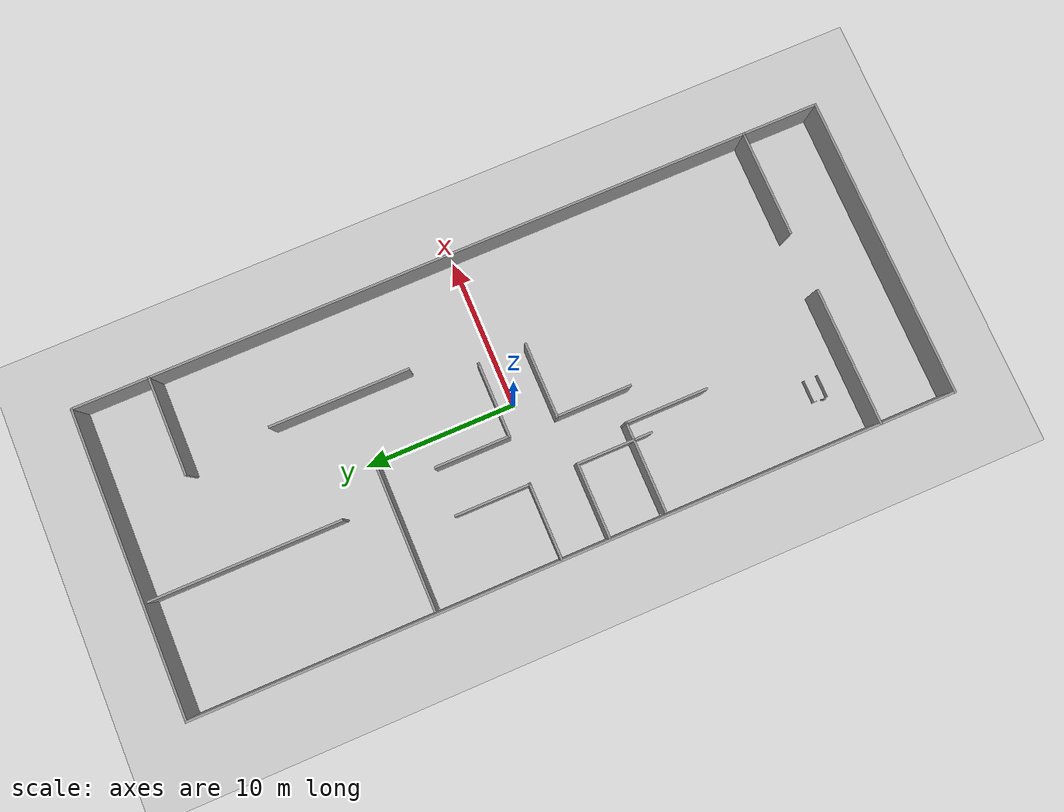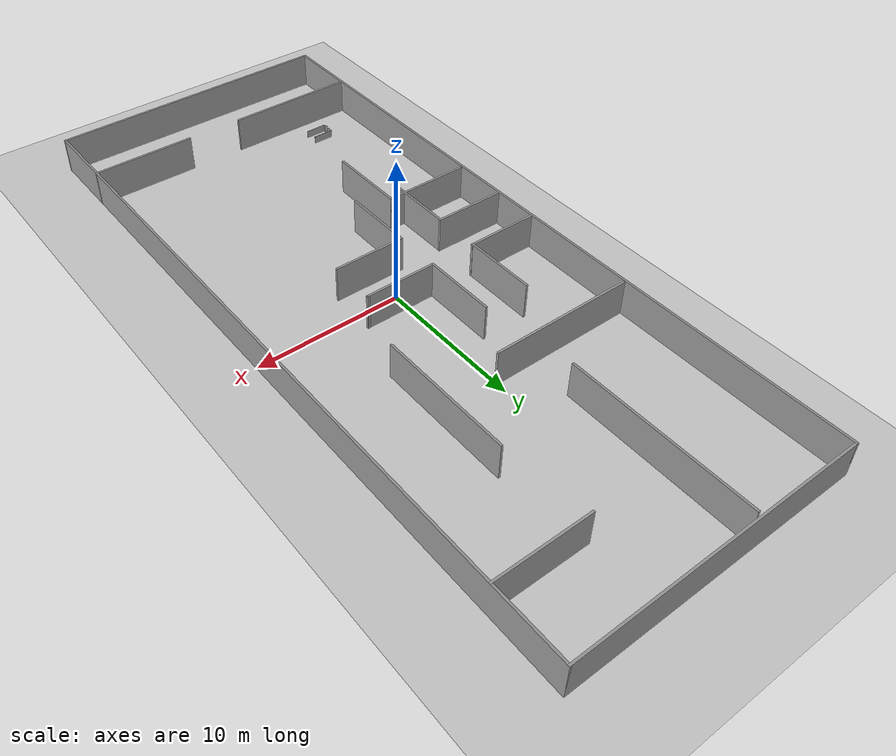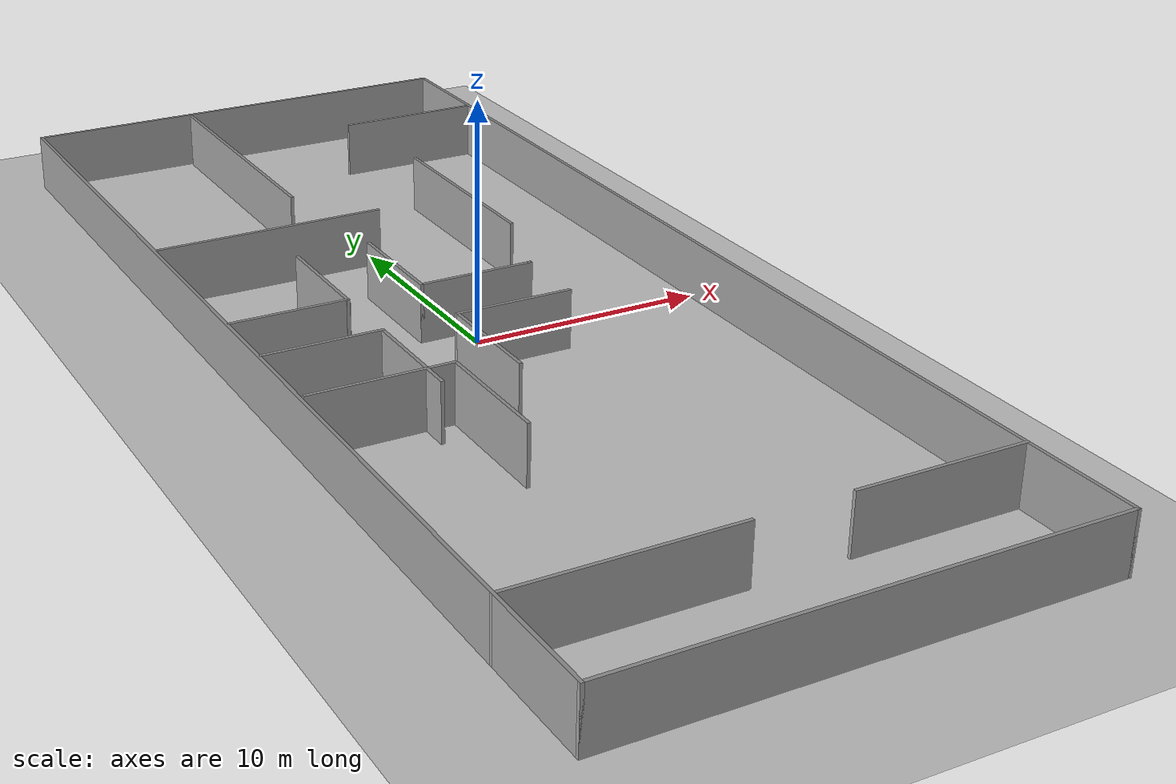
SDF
<sdf version="1.7">
 <world name="default">
  <include><uri>model://ground_plane</uri></include>
  <include><uri>model://sun</uri></include>
  <scene><shadows>false</shadows></scene>
  <physics type="ode">
   <real_time_update_rate>1000.0</real_time_update_rate>
   <max_step_size>0.001</max_step_size>
   <real_time_factor>1</real_time_factor>
   <ode>
    <solver>
     <type>quick</type>
     <iters>150</iters>
     <precon_iters>0</precon_iters>
     <sor>1.400000</sor>
     <use_dynamic_moi_rescaling>1</use_dynamic_moi_rescaling>
    </solver>
    <constraints>
     <cfm>0.00001</cfm>
     <erp>0.2</erp>
     <contact_max_correcting_vel>2000.000000</contact_max_correcting_vel>
     <contact_surface_layer>0.01000</contact_surface_layer>
    </constraints>
   </ode>
  </physics>
  <model name="walls"><static>1</static><include><uri>model://walls</uri></include></model>
  <model name="V-marker_left_side">
   <static>1</static>
   <pose>-7 -18 0.0 0.0 0.0 -3.14</pose>
   <include><uri>model://V-marker_left_side</uri></include>
  </model>
  <include><uri>model://kavsak</uri></include>
  <plugin name="gazebo_ros_state" filename="libgazebo_ros_state.so">
   <ros><namespace>/gazebo</namespace></ros>
   <update_rate>30.0</update_rate>
  </plugin>
 </world>
</sdf>

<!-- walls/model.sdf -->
<sdf version='1.7'>
  <model name='walls'>
    <pose>0 0 0 0 -0 0</pose>
    <link name='Wall_0'>
        <collision name='Wall_0_Collision'>
          <geometry>
            <box>
            <size>20.15 0.15 2.5</size>
            </box>
          </geometry>
          <pose>0 0 1.25 0 -0 0</pose>
        </collision>
        <visual name='Wall_0_Visual'>
          <pose>0 0 1.25 0 -0 0</pose>
          <geometry>
          <box>
            <size>20.15 0.15 2.5</size>
          </box>
        </geometry>
        <material>
          <script>
            <uri>file://media/materials/scripts/gazebo.material</uri>
            <name>Gazebo/Grey</name>
          </script>
          <ambient>1 1 1 1</ambient>
        </material>
        <meta>
            <layer>0</layer>
          </meta>
        </visual>
      <pose>0 -25 0 0 -0 0</pose>
      </link>
    <link name='Wall_15'>
        <collision name='Wall_15_Collision'>
          <geometry>
            <box>
            <size>12.5 0.15 2.5</size>
            </box>
          </geometry>
          <pose>0 0 1.25 0 -0 0</pose>
        </collision>
        <visual name='Wall_15_Visual'>
          <pose>0 0 1.25 0 -0 0</pose>
          <geometry>
          <box>
            <size>12.5 0.15 2.5</size>
          </box>
        </geometry>
        <material>
          <script>
            <uri>file://media/materials/scripts/gazebo.material</uri>
            <name>Gazebo/Grey</name>
          </script>
          <ambient>1 1 1 1</ambient>
        </material>
        <meta>
            <layer>0</layer>
          </meta>
        </visual>
      <pose>-2.65486 18.511 0 0 -0 -1.5708</pose>
      </link>
    <link name='Wall_17'>
        <collision name='Wall_17_Collision'>
          <geometry>
            <box>
            <size>9.948 0.15 2.5</size>
            </box>
          </geometry>
          <pose>0 0 1.25 0 -0 0</pose>
        </collision>
        <visual name='Wall_17_Visual'>
          <pose>0 0 1.25 0 -0 0</pose>
          <geometry>
          <box>
            <size>9.948 0.15 2.5</size>
          </box>
        </geometry>
        <material>
          <script>
            <uri>file://media/materials/scripts/gazebo.material</uri>
            <name>Gazebo/Grey</name>
          </script>
          <ambient>1 1 1 1</ambient>
        </material>
        <meta>
            <layer>0</layer>
          </meta>
        </visual>
      <pose>-4.899 9.21 0 0 -0 0</pose>
      </link>
    <link name='Wall_20'>
        <collision name='Wall_20_Collision'>
          <geometry>
            <box>
            <size>7.15 0.15 2.5</size>
            </box>
          </geometry>
          <pose>0 0 1.25 0 -0 0</pose>
        </collision>
        <visual name='Wall_20_Visual'>
          <pose>0 0 1.25 0 -0 0</pose>
          <geometry>
          <box>
            <size>7.15 0.15 2.5</size>
          </box>
        </geometry>
        <material>
          <script>
            <uri>file://media/materials/scripts/gazebo.material</uri>
            <name>Gazebo/Grey</name>
          </script>
          <ambient>1 1 1 1</ambient>
        </material>
        <meta>
            <layer>0</layer>
          </meta>
        </visual>
      <pose>6.5 -20 0 0 -0 3.14159</pose>
      </link>
    <link name='Wall_22'>
        <collision name='Wall_22_Collision'>
          <geometry>
            <box>
            <size>9.15 0.15 2.5</size>
            </box>
          </geometry>
          <pose>0 0 1.25 0 -0 0</pose>
        </collision>
        <visual name='Wall_22_Visual'>
          <pose>0 0 1.25 0 -0 0</pose>
          <geometry>
          <box>
            <size>9.15 0.15 2.5</size>
          </box>
        </geometry>
        <material>
          <script>
            <uri>file://media/materials/scripts/gazebo.material</uri>
            <name>Gazebo/Grey</name>
          </script>
          <ambient>1 1 1 1</ambient>
        </material>
        <meta>
            <layer>0</layer>
          </meta>
        </visual>
      <pose>-5.5 -20 0 0 -0 0</pose>
      </link>
    <link name='Wall_29'>
        <collision name='Wall_29_Collision'>
          <geometry>
            <box>
            <size>6 0.15 2.5</size>
            </box>
          </geometry>
          <pose>0 0 1.25 0 -0 0</pose>
        </collision>
        <visual name='Wall_29_Visual'>
          <pose>0 0 1.25 0 -0 0</pose>
          <geometry>
          <box>
            <size>6 0.15 2.5</size>
          </box>
        </geometry>
        <material>
          <script>
            <uri>file://media/materials/scripts/gazebo.material</uri>
            <name>Gazebo/Grey</name>
          </script>
          <ambient>1 1 1 1</ambient>
        </material>
        <meta>
            <layer>0</layer>
          </meta>
        </visual>
      <pose>-6.84408 -5.7701 0 0 -0 0</pose>
      </link>
    <link name='Wall_3'>
        <collision name='Wall_3_Collision'>
          <geometry>
            <box>
            <size>50.15 0.15 2.5</size>
            </box>
          </geometry>
          <pose>0 0 1.25 0 -0 0</pose>
        </collision>
        <visual name='Wall_3_Visual'>
          <pose>0 0 1.25 0 -0 0</pose>
          <geometry>
          <box>
            <size>50.15 0.15 2.5</size>
          </box>
        </geometry>
        <material>
          <script>
            <uri>file://media/materials/scripts/gazebo.material</uri>
            <name>Gazebo/Grey</name>
          </script>
          <ambient>1 1 1 1</ambient>
        </material>
        <meta>
            <layer>0</layer>
          </meta>
        </visual>
      <pose>-10 0 0 0 -0 1.5708</pose>
      </link>
    <link name='Wall_30'>
        <collision name='Wall_30_Collision'>
          <geometry>
            <box>
            <size>5.5 0.15 2.5</size>
            </box>
          </geometry>
          <pose>0 0 1.25 0 -0 0</pose>
        </collision>
        <visual name='Wall_30_Visual'>
          <pose>0 0 1.25 0 -0 0</pose>
          <geometry>
          <box>
            <size>5.5 0.15 2.5</size>
          </box>
        </geometry>
        <material>
          <script>
            <uri>file://media/materials/scripts/gazebo.material</uri>
            <name>Gazebo/Grey</name>
          </script>
          <ambient>1 1 1 1</ambient>
        </material>
        <meta>
            <layer>0</layer>
          </meta>
        </visual>
      <pose>-3.91907 -8.4451 0 0 -0 -1.5708</pose>
      </link>
    <link name='Wall_35'>
        <collision name='Wall_35_Collision'>
          <geometry>
            <box>
            <size>6.575 0.15 2.5</size>
            </box>
          </geometry>
          <pose>0 0 1.25 0 -0 0</pose>
        </collision>
        <visual name='Wall_35_Visual'>
          <pose>0 0 1.25 0 -0 0</pose>
          <geometry>
          <box>
            <size>6.575 0.15 2.5</size>
          </box>
        </geometry>
        <material>
          <script>
            <uri>file://media/materials/scripts/gazebo.material</uri>
            <name>Gazebo/Grey</name>
          </script>
          <ambient>1 1 1 1</ambient>
        </material>
        <meta>
            <layer>0</layer>
          </meta>
        </visual>
      <pose>6.7875 20 0 0 -0 0</pose>
      </link>
    <link name='Wall_38'>
        <collision name='Wall_38_Collision'>
          <geometry>
            <box>
            <size>9.25 0.15 2.5</size>
            </box>
          </geometry>
          <pose>0 0 1.25 0 -0 0</pose>
        </collision>
        <visual name='Wall_38_Visual'>
          <pose>0 0 1.25 0 -0 0</pose>
          <geometry>
          <box>
            <size>9.25 0.15 2.5</size>
          </box>
        </geometry>
        <material>
          <script>
            <uri>file://media/materials/scripts/gazebo.material</uri>
            <name>Gazebo/Grey</name>
          </script>
          <ambient>1 1 1 1</ambient>
        </material>
        <meta>
            <layer>0</layer>
          </meta>
        </visual>
      <pose>4.30156 9.73656 0 0 -0 -1.5708</pose>
      </link>
    <link name='Wall_5'>
        <collision name='Wall_5_Collision'>
          <geometry>
            <box>
            <size>20.15 0.15 2.5</size>
            </box>
          </geometry>
          <pose>0 0 1.25 0 -0 0</pose>
        </collision>
        <visual name='Wall_5_Visual'>
          <pose>0 0 1.25 0 -0 0</pose>
          <geometry>
          <box>
            <size>20.15 0.15 2.5</size>
          </box>
        </geometry>
        <material>
          <script>
            <uri>file://media/materials/scripts/gazebo.material</uri>
            <name>Gazebo/Grey</name>
          </script>
          <ambient>1 1 1 1</ambient>
        </material>
        <meta>
            <layer>0</layer>
          </meta>
        </visual>
      <pose>0 25 0 0 -0 0</pose>
      </link>
    <link name='Wall_6'>
        <collision name='Wall_6_Collision'>
          <geometry>
            <box>
            <size>50.15 0.15 2.5</size>
            </box>
          </geometry>
          <pose>0 0 1.25 0 -0 0</pose>
        </collision>
        <visual name='Wall_6_Visual'>
          <pose>0 0 1.25 0 -0 0</pose>
          <geometry>
          <box>
            <size>50.15 0.15 2.5</size>
          </box>
        </geometry>
        <material>
          <script>
            <uri>file://media/materials/scripts/gazebo.material</uri>
            <name>Gazebo/Grey</name>
          </script>
          <ambient>1 1 1 1</ambient>
        </material>
        <meta>
            <layer>0</layer>
          </meta>
        </visual>
      <pose>10 0 0 0 -0 -1.5708</pose>
      </link>
      <static>1</static>
    </model>
</sdf>

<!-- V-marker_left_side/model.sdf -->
<sdf version='1.7'>
  <model name='V-marker_left_side'>
    <link name='link_0'>
      <inertial>
        <mass>0.00671136</mass>
        <inertia>
          <ixx>0.00055938</ixx>
          <ixy>0</ixy>
          <ixz>0</ixz>
          <iyy>0.00069373</iyy>
          <iyz>0</iyz>
          <izz>0.00013455</izz>
        </inertia>
        <pose>0 0 0 0 -0 0</pose>
      </inertial>
      <pose>0.280926 0.243675 0 0 0 -0.906067</pose>
      <gravity>1</gravity>
      <self_collide>0</self_collide>
      <kinematic>0</kinematic>
      <enable_wind>0</enable_wind>
      <visual name='visual'>
        <pose>0 0 0 0 -0 0</pose>
        <geometry>
          <box>
            <size>0.2 0.01 1</size>
          </box>
        </geometry>
        <material>
          <lighting>1</lighting>
          <script>
            <uri>file://media/materials/scripts/gazebo.material</uri>
            <name>Gazebo/Grey</name>
          </script>
          <shader type='pixel'>
            <normal_map>__default__</normal_map>
          </shader>
          <ambient>0.3 0.3 0.3 1</ambient>
          <diffuse>0.7 0.7 0.7 1</diffuse>
          <specular>0.01 0.01 0.01 1</specular>
          <emissive>0 0 0 1</emissive>
        </material>
        <transparency>0</transparency>
        <cast_shadows>1</cast_shadows>
      </visual>
      <collision name='collision'>
        <laser_retro>0</laser_retro>
        <max_contacts>10</max_contacts>
        <pose>0 0 0 0 -0 0</pose>
        <geometry>
          <box>
            <size>0.2 0.01 1</size>
          </box>
        </geometry>
        <surface>
          <friction>
            <ode>
              <mu>1</mu>
              <mu2>1</mu2>
              <fdir1>0 0 0</fdir1>
              <slip1>0</slip1>
              <slip2>0</slip2>
            </ode>
            <torsional>
              <coefficient>1</coefficient>
              <patch_radius>0</patch_radius>
              <surface_radius>0</surface_radius>
              <use_patch_radius>1</use_patch_radius>
              <ode>
                <slip>0</slip>
              </ode>
            </torsional>
          </friction>
          <bounce>
            <restitution_coefficient>0</restitution_coefficient>
            <threshold>1e+06</threshold>
          </bounce>
          <contact>
            <collide_without_contact>0</collide_without_contact>
            <collide_without_contact_bitmask>1</collide_without_contact_bitmask>
            <collide_bitmask>1</collide_bitmask>
            <ode>
              <soft_cfm>0</soft_cfm>
              <soft_erp>0.2</soft_erp>
              <kp>1e+13</kp>
              <kd>1</kd>
              <max_vel>0.01</max_vel>
              <min_depth>0</min_depth>
            </ode>
            <bullet>
              <split_impulse>1</split_impulse>
              <split_impulse_penetration_threshold>-0.01</split_impulse_penetration_threshold>
              <soft_cfm>0</soft_cfm>
              <soft_erp>0.2</soft_erp>
              <kp>1e+13</kp>
              <kd>1</kd>
            </bullet>
          </contact>
        </surface>
      </collision>
    </link>
    <link name='link_0_clone'>
      <inertial>
        <mass>0.00493221</mass>
        <inertia>
          <ixx>0.00041106</ixx>
          <ixy>0</ixy>
          <ixz>0</ixz>
          <iyy>0.000431</iyy>
          <iyz>0</iyz>
          <izz>2.002e-05</izz>
        </inertia>
        <pose>0 0 0 0 -0 0</pose>
      </inertial>
      <pose>0.278572 0.084188 0 0 -0 0.868221</pose>
      <gravity>1</gravity>
      <self_collide>0</self_collide>
      <kinematic>0</kinematic>
      <enable_wind>0</enable_wind>
      <visual name='visual'>
        <pose>0 0 0 0 -0 0</pose>
        <geometry>
          <box>
            <size>0.2 0.01 1</size>
          </box>
        </geometry>
        <material>
          <lighting>1</lighting>
          <script>
            <uri>file://media/materials/scripts/gazebo.material</uri>
            <name>Gazebo/Grey</name>
          </script>
          <shader type='pixel'>
            <normal_map>__default__</normal_map>
          </shader>
          <ambient>0.3 0.3 0.3 1</ambient>
          <diffuse>0.7 0.7 0.7 1</diffuse>
          <specular>0.01 0.01 0.01 1</specular>
          <emissive>0 0 0 1</emissive>
        </material>
        <transparency>0</transparency>
        <cast_shadows>1</cast_shadows>
      </visual>
      <collision name='collision_1'>
        <laser_retro>0</laser_retro>
        <max_contacts>10</max_contacts>
        <pose>0 0 0 0 -0 0</pose>
        <geometry>
          <box>
            <size>0.2 0.01 1</size>
          </box>
        </geometry>
        <surface>
          <friction>
            <ode>
              <mu>1</mu>
              <mu2>1</mu2>
              <fdir1>0 0 0</fdir1>
              <slip1>0</slip1>
              <slip2>0</slip2>
            </ode>
            <torsional>
              <coefficient>1</coefficient>
              <patch_radius>0</patch_radius>
              <surface_radius>0</surface_radius>
              <use_patch_radius>1</use_patch_radius>
              <ode>
                <slip>0</slip>
              </ode>
            </torsional>
          </friction>
          <bounce>
            <restitution_coefficient>0</restitution_coefficient>
            <threshold>1e+06</threshold>
          </bounce>
          <contact>
            <collide_without_contact>0</collide_without_contact>
            <collide_without_contact_bitmask>1</collide_without_contact_bitmask>
            <collide_bitmask>1</collide_bitmask>
            <ode>
              <soft_cfm>0</soft_cfm>
              <soft_erp>0.2</soft_erp>
              <kp>1e+13</kp>
              <kd>1</kd>
              <max_vel>0.01</max_vel>
              <min_depth>0</min_depth>
            </ode>
            <bullet>
              <split_impulse>1</split_impulse>
              <split_impulse_penetration_threshold>-0.01</split_impulse_penetration_threshold>
              <soft_cfm>0</soft_cfm>
              <soft_erp>0.2</soft_erp>
              <kp>1e+13</kp>
              <kd>1</kd>
            </bullet>
          </contact>
        </surface>
      </collision>
    </link>
    <link name='link_1'>
      <inertial>
        <mass>0.00223842</mass>
        <inertia>
          <ixx>0.000187845</ixx>
          <ixy>0</ixy>
          <ixz>0</ixz>
          <iyy>0.000186577</iyy>
          <iyz>0</iyz>
          <izz>1.35208e-06</izz>
        </inertia>
        <pose>0 0 0 0 -0 0</pose>
      </inertial>
      <pose>0.224072 0.363978 0 0 -0 0</pose>
      <gravity>1</gravity>
      <self_collide>0</self_collide>
      <kinematic>0</kinematic>
      <enable_wind>0</enable_wind>
      <visual name='visual'>
        <pose>0 0 0 0 -0 0</pose>
        <geometry>
          <box>
            <size>0.015 0.083806 1</size>
          </box>
        </geometry>
        <material>
          <lighting>1</lighting>
          <script>
            <uri>file://media/materials/scripts/gazebo.material</uri>
            <name>Gazebo/Grey</name>
          </script>
          <shader type='pixel'>
            <normal_map>__default__</normal_map>
          </shader>
          <ambient>0.3 0.3 0.3 1</ambient>
          <diffuse>0.7 0.7 0.7 1</diffuse>
          <specular>0.01 0.01 0.01 1</specular>
          <emissive>0 0 0 1</emissive>
        </material>
        <transparency>0</transparency>
        <cast_shadows>1</cast_shadows>
      </visual>
      <collision name='collision'>
        <laser_retro>0</laser_retro>
        <max_contacts>10</max_contacts>
        <pose>0 0 0 0 -0 0</pose>
        <geometry>
          <box>
            <size>0.015 0.083806 1</size>
          </box>
        </geometry>
        <surface>
          <friction>
            <ode>
              <mu>1</mu>
              <mu2>1</mu2>
              <fdir1>0 0 0</fdir1>
              <slip1>0</slip1>
              <slip2>0</slip2>
            </ode>
            <torsional>
              <coefficient>1</coefficient>
              <patch_radius>0</patch_radius>
              <surface_radius>0</surface_radius>
              <use_patch_radius>1</use_patch_radius>
              <ode>
                <slip>0</slip>
              </ode>
            </torsional>
          </friction>
          <bounce>
            <restitution_coefficient>0</restitution_coefficient>
            <threshold>1e+06</threshold>
          </bounce>
          <contact>
            <collide_without_contact>0</collide_without_contact>
            <collide_without_contact_bitmask>1</collide_without_contact_bitmask>
            <collide_bitmask>1</collide_bitmask>
            <ode>
              <soft_cfm>0</soft_cfm>
              <soft_erp>0.2</soft_erp>
              <kp>1e+13</kp>
              <kd>1</kd>
              <max_vel>0.01</max_vel>
              <min_depth>0</min_depth>
            </ode>
            <bullet>
              <split_impulse>1</split_impulse>
              <split_impulse_penetration_threshold>-0.01</split_impulse_penetration_threshold>
              <soft_cfm>0</soft_cfm>
              <soft_erp>0.2</soft_erp>
              <kp>1e+13</kp>
              <kd>1</kd>
            </bullet>
          </contact>
        </surface>
      </collision>
    </link>
    <link name='link_1_clone'>
      <inertial>
        <mass>0.0124672</mass>
        <inertia>
          <ixx>0.00133262</ixx>
          <ixy>0</ixy>
          <ixz>0</ixz>
          <iyy>0.00103917</iyy>
          <iyz>0</iyz>
          <izz>0.000293918</izz>
        </inertia>
        <pose>0 0 0 0 -0 0</pose>
      </inertial>
      <pose>0.217663 -0.254445 0 0 -0 0</pose>
      <gravity>1</gravity>
      <self_collide>0</self_collide>
      <kinematic>0</kinematic>
      <enable_wind>0</enable_wind>
      <visual name='visual'>
        <pose>0 0 0 0 -0 0</pose>
        <geometry>
          <box>
            <size>0.015 0.531675 1</size>
          </box>
        </geometry>
        <material>
          <lighting>1</lighting>
          <script>
            <uri>file://media/materials/scripts/gazebo.material</uri>
            <name>Gazebo/Grey</name>
          </script>
          <shader type='pixel'>
            <normal_map>__default__</normal_map>
          </shader>
          <ambient>0.3 0.3 0.3 1</ambient>
          <diffuse>0.7 0.7 0.7 1</diffuse>
          <specular>0.01 0.01 0.01 1</specular>
          <emissive>0 0 0 1</emissive>
        </material>
        <transparency>0</transparency>
        <cast_shadows>1</cast_shadows>
      </visual>
      <collision name='collision'>
        <laser_retro>0</laser_retro>
        <max_contacts>10</max_contacts>
        <pose>0 0 0 0 -0 0</pose>
        <geometry>
          <box>
            <size>0.015 0.531675 1</size>
          </box>
        </geometry>
        <surface>
          <friction>
            <ode>
              <mu>1</mu>
              <mu2>1</mu2>
              <fdir1>0 0 0</fdir1>
              <slip1>0</slip1>
              <slip2>0</slip2>
            </ode>
            <torsional>
              <coefficient>1</coefficient>
              <patch_radius>0</patch_radius>
              <surface_radius>0</surface_radius>
              <use_patch_radius>1</use_patch_radius>
              <ode>
                <slip>0</slip>
              </ode>
            </torsional>
          </friction>
          <bounce>
            <restitution_coefficient>0</restitution_coefficient>
            <threshold>1e+06</threshold>
          </bounce>
          <contact>
            <collide_without_contact>0</collide_without_contact>
            <collide_without_contact_bitmask>1</collide_without_contact_bitmask>
            <collide_bitmask>1</collide_bitmask>
            <ode>
              <soft_cfm>0</soft_cfm>
              <soft_erp>0.2</soft_erp>
              <kp>1e+13</kp>
              <kd>1</kd>
              <max_vel>0.01</max_vel>
              <min_depth>0</min_depth>
            </ode>
            <bullet>
              <split_impulse>1</split_impulse>
              <split_impulse_penetration_threshold>-0.01</split_impulse_penetration_threshold>
              <soft_cfm>0</soft_cfm>
              <soft_erp>0.2</soft_erp>
              <kp>1e+13</kp>
              <kd>1</kd>
            </bullet>
          </contact>
        </surface>
      </collision>
    </link>
    <link name='link_2'>
      <inertial>
        <mass>0.00755038</mass>
        <inertia>
          <ixx>0.00062921</ixx>
          <ixy>0</ixy>
          <ixz>0</ixz>
          <iyy>0.00221903</iyy>
          <iyz>0</iyz>
          <izz>0.00158985</izz>
        </inertia>
        <pose>0 0 0 0 -0 0</pose>
      </inertial>
      <pose>-0.522253 0.407331 0 0 -0 0</pose>
      <gravity>1</gravity>
      <self_collide>0</self_collide>
      <kinematic>0</kinematic>
      <enable_wind>0</enable_wind>
      <visual name='visual'>
        <pose>0 0 0 0 -0 0</pose>
        <geometry>
          <box>
            <size>1.5 0.004719 1</size>
          </box>
        </geometry>
        <material>
          <lighting>1</lighting>
          <script>
            <uri>file://media/materials/scripts/gazebo.material</uri>
            <name>Gazebo/Grey</name>
          </script>
          <shader type='pixel'>
            <normal_map>__default__</normal_map>
          </shader>
          <ambient>0.3 0.3 0.3 1</ambient>
          <diffuse>0.7 0.7 0.7 1</diffuse>
          <specular>0.01 0.01 0.01 1</specular>
          <emissive>0 0 0 1</emissive>
        </material>
        <transparency>0</transparency>
        <cast_shadows>1</cast_shadows>
      </visual>
      <collision name='collision'>
        <laser_retro>0</laser_retro>
        <max_contacts>10</max_contacts>
        <pose>0 0 0 0 -0 0</pose>
        <geometry>
          <box>
            <size>1.5 0.004719 1</size>
          </box>
        </geometry>
        <surface>
          <friction>
            <ode>
              <mu>1</mu>
              <mu2>1</mu2>
              <fdir1>0 0 0</fdir1>
              <slip1>0</slip1>
              <slip2>0</slip2>
            </ode>
            <torsional>
              <coefficient>1</coefficient>
              <patch_radius>0</patch_radius>
              <surface_radius>0</surface_radius>
              <use_patch_radius>1</use_patch_radius>
              <ode>
                <slip>0</slip>
              </ode>
            </torsional>
          </friction>
          <bounce>
            <restitution_coefficient>0</restitution_coefficient>
            <threshold>1e+06</threshold>
          </bounce>
          <contact>
            <collide_without_contact>0</collide_without_contact>
            <collide_without_contact_bitmask>1</collide_without_contact_bitmask>
            <collide_bitmask>1</collide_bitmask>
            <ode>
              <soft_cfm>0</soft_cfm>
              <soft_erp>0.2</soft_erp>
              <kp>1e+13</kp>
              <kd>1</kd>
              <max_vel>0.01</max_vel>
              <min_depth>0</min_depth>
            </ode>
            <bullet>
              <split_impulse>1</split_impulse>
              <split_impulse_penetration_threshold>-0.01</split_impulse_penetration_threshold>
              <soft_cfm>0</soft_cfm>
              <soft_erp>0.2</soft_erp>
              <kp>1e+13</kp>
              <kd>1</kd>
            </bullet>
          </contact>
        </surface>
      </collision>
    </link>
    <link name='link_2_clone'>
      <inertial>
        <mass>0.00694843</mass>
        <inertia>
          <ixx>0.00057905</ixx>
          <ixy>0</ixy>
          <ixz>0</ixz>
          <iyy>0.00183148</iyy>
          <iyz>0</iyz>
          <izz>0.00125246</izz>
        </inertia>
        <pose>0 0 0 0 -0 0</pose>
      </inertial>
      <pose>-0.515428 -0.527783 0 0 -0 0</pose>
      <gravity>1</gravity>
      <self_collide>0</self_collide>
      <kinematic>0</kinematic>
      <enable_wind>0</enable_wind>
      <visual name='visual'>
        <pose>0 0 0 0 -0 0</pose>
        <geometry>
          <box>
            <size>1.5 0.004719 1</size>
          </box>
        </geometry>
        <material>
          <lighting>1</lighting>
          <script>
            <uri>file://media/materials/scripts/gazebo.material</uri>
            <name>Gazebo/Grey</name>
          </script>
          <shader type='pixel'>
            <normal_map>__default__</normal_map>
          </shader>
          <ambient>0.3 0.3 0.3 1</ambient>
          <diffuse>0.7 0.7 0.7 1</diffuse>
          <specular>0.01 0.01 0.01 1</specular>
          <emissive>0 0 0 1</emissive>
        </material>
        <transparency>0</transparency>
        <cast_shadows>1</cast_shadows>
      </visual>
      <collision name='collision'>
        <laser_retro>0</laser_retro>
        <max_contacts>10</max_contacts>
        <pose>0 0 0 0 -0 0</pose>
        <geometry>
          <box>
            <size>1.5 0.004719 1</size>
          </box>
        </geometry>
        <surface>
          <friction>
            <ode>
              <mu>1</mu>
              <mu2>1</mu2>
              <fdir1>0 0 0</fdir1>
              <slip1>0</slip1>
              <slip2>0</slip2>
            </ode>
            <torsional>
              <coefficient>1</coefficient>
              <patch_radius>0</patch_radius>
              <surface_radius>0</surface_radius>
              <use_patch_radius>1</use_patch_radius>
              <ode>
                <slip>0</slip>
              </ode>
            </torsional>
          </friction>
          <bounce>
            <restitution_coefficient>0</restitution_coefficient>
            <threshold>1e+06</threshold>
          </bounce>
          <contact>
            <collide_without_contact>0</collide_without_contact>
            <collide_without_contact_bitmask>1</collide_without_contact_bitmask>
            <collide_bitmask>1</collide_bitmask>
            <ode>
              <soft_cfm>0</soft_cfm>
              <soft_erp>0.2</soft_erp>
              <kp>1e+13</kp>
              <kd>1</kd>
              <max_vel>0.01</max_vel>
              <min_depth>0</min_depth>
            </ode>
            <bullet>
              <split_impulse>1</split_impulse>
              <split_impulse_penetration_threshold>-0.01</split_impulse_penetration_threshold>
              <soft_cfm>0</soft_cfm>
              <soft_erp>0.2</soft_erp>
              <kp>1e+13</kp>
              <kd>1</kd>
            </bullet>
          </contact>
        </surface>
      </collision>
    </link>
    <static>0</static>
    <allow_auto_disable>1</allow_auto_disable>
  </model>
</sdf>

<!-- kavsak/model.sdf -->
<sdf version='1.7'>
  <model name='kavsak'>
    <pose>-3.48 -0.495 0 0 -0 0</pose>
    <link name='Wall_0'>
      <collision name='Wall_0_Collision'>
        <geometry>
          <box>
            <size>5 0.15 2.5</size>
          </box>
        </geometry>
        <pose>0 0 1.25 0 -0 0</pose>
      </collision>
      <visual name='Wall_0_Visual'>
        <pose>0 0 1.25 0 -0 0</pose>
        <geometry>
          <box>
            <size>5 0.15 2.5</size>
          </box>
        </geometry>
        <material>
          <script>
            <uri>file://media/materials/scripts/gazebo.material</uri>
            <name>Gazebo/Grey</name>
          </script>
          <ambient>1 1 1 1</ambient>
        </material>
        <meta>
          <layer>0</layer>
        </meta>
      </visual>
      <pose>-3.995 1.585 0 0 -0 0</pose>
    </link>
    <link name='Wall_12'>
      <collision name='Wall_12_Collision'>
        <geometry>
          <box>
            <size>5 0.15 2.5</size>
          </box>
        </geometry>
        <pose>0 0 1.25 0 -0 0</pose>
      </collision>
      <visual name='Wall_12_Visual'>
        <pose>0 0 1.25 0 -0 0</pose>
        <geometry>
          <box>
            <size>5 0.15 2.5</size>
          </box>
        </geometry>
        <material>
          <script>
            <uri>file://media/materials/scripts/gazebo.material</uri>
            <name>Gazebo/Grey</name>
          </script>
          <ambient>1 1 1 1</ambient>
        </material>
        <meta>
          <layer>0</layer>
        </meta>
      </visual>
      <pose>3.985 -1.545 0 0 -0 0</pose>
    </link>
    <link name='Wall_15'>
      <collision name='Wall_15_Collision'>
        <geometry>
          <box>
            <size>5 0.15 2.5</size>
          </box>
        </geometry>
        <pose>0 0 1.25 0 -0 0</pose>
      </collision>
      <visual name='Wall_15_Visual'>
        <pose>0 0 1.25 0 -0 0</pose>
        <geometry>
          <box>
            <size>5 0.15 2.5</size>
          </box>
        </geometry>
        <material>
          <script>
            <uri>file://media/materials/scripts/gazebo.material</uri>
            <name>Gazebo/Grey</name>
          </script>
          <ambient>1 1 1 1</ambient>
        </material>
        <meta>
          <layer>0</layer>
        </meta>
      </visual>
      <pose>1.56 -3.99 0 0 -0 -1.5708</pose>
    </link>
    <link name='Wall_17'>
      <collision name='Wall_17_Collision'>
        <geometry>
          <box>
            <size>5 0.15 2.5</size>
          </box>
        </geometry>
        <pose>0 0 1.25 0 -0 0</pose>
      </collision>
      <visual name='Wall_17_Visual'>
        <pose>0 0 1.25 0 -0 0</pose>
        <geometry>
          <box>
            <size>5 0.15 2.5</size>
          </box>
        </geometry>
        <material>
          <script>
            <uri>file://media/materials/scripts/gazebo.material</uri>
            <name>Gazebo/Grey</name>
          </script>
          <ambient>1 1 1 1</ambient>
        </material>
        <meta>
          <layer>0</layer>
        </meta>
      </visual>
      <pose>3.995 1.585 0 0 -0 0</pose>
    </link>
    <link name='Wall_18'>
      <collision name='Wall_18_Collision'>
        <geometry>
          <box>
            <size>0.15 0.15 2.5</size>
          </box>
        </geometry>
        <pose>0 0 1.25 0 -0 0</pose>
      </collision>
      <visual name='Wall_18_Visual'>
        <pose>0 0 1.25 0 -0 0</pose>
        <geometry>
          <box>
            <size>0.15 0.15 2.5</size>
          </box>
        </geometry>
        <material>
          <script>
            <uri>file://media/materials/scripts/gazebo.material</uri>
            <name>Gazebo/Grey</name>
          </script>
          <ambient>1 1 1 1</ambient>
        </material>
        <meta>
          <layer>0</layer>
        </meta>
      </visual>
      <pose>6.4 1.595 0 0 -0 0</pose>
    </link>
    <link name='Wall_2'>
      <collision name='Wall_2_Collision'>
        <geometry>
          <box>
            <size>5 0.15 2.5</size>
          </box>
        </geometry>
        <pose>0 0 1.25 0 -0 0</pose>
      </collision>
      <visual name='Wall_2_Visual'>
        <pose>0 0 1.25 0 -0 0</pose>
        <geometry>
          <box>
            <size>5 0.15 2.5</size>
          </box>
        </geometry>
        <material>
          <script>
            <uri>file://media/materials/scripts/gazebo.material</uri>
            <name>Gazebo/Grey</name>
          </script>
          <ambient>1 1 1 1</ambient>
        </material>
        <meta>
          <layer>0</layer>
        </meta>
      </visual>
      <pose>-3.995 -1.565 0 0 -0 0</pose>
    </link>
    <link name='Wall_20'>
      <collision name='Wall_20_Collision'>
        <geometry>
          <box>
            <size>5 0.15 2.5</size>
          </box>
        </geometry>
        <pose>0 0 1.25 0 -0 0</pose>
      </collision>
      <visual name='Wall_20_Visual'>
        <pose>0 0 1.25 0 -0 0</pose>
        <geometry>
          <box>
            <size>5 0.15 2.5</size>
          </box>
        </geometry>
        <material>
          <script>
            <uri>file://media/materials/scripts/gazebo.material</uri>
            <name>Gazebo/Grey</name>
          </script>
          <ambient>1 1 1 1</ambient>
        </material>
        <meta>
          <layer>0</layer>
        </meta>
      </visual>
      <pose>-1.59 4 0 0 -0 -1.5708</pose>
    </link>
    <link name='Wall_22'>
      <collision name='Wall_22_Collision'>
        <geometry>
          <box>
            <size>5 0.15 2.5</size>
          </box>
        </geometry>
        <pose>0 0 1.25 0 -0 0</pose>
      </collision>
      <visual name='Wall_22_Visual'>
        <pose>0 0 1.25 0 -0 0</pose>
        <geometry>
          <box>
            <size>5 0.15 2.5</size>
          </box>
        </geometry>
        <material>
          <script>
            <uri>file://media/materials/scripts/gazebo.material</uri>
            <name>Gazebo/Grey</name>
          </script>
          <ambient>1 1 1 1</ambient>
        </material>
        <meta>
          <layer>0</layer>
        </meta>
      </visual>
      <pose>1.57 4.01 0 0 -0 -1.5708</pose>
    </link>
    <link name='Wall_4'>
      <collision name='Wall_4_Collision'>
        <geometry>
          <box>
            <size>5 0.15 2.5</size>
          </box>
        </geometry>
        <pose>0 0 1.25 0 -0 0</pose>
      </collision>
      <visual name='Wall_4_Visual'>
        <pose>0 0 1.25 0 -0 0</pose>
        <geometry>
          <box>
            <size>5 0.15 2.5</size>
          </box>
        </geometry>
        <material>
          <script>
            <uri>file://media/materials/scripts/gazebo.material</uri>
            <name>Gazebo/Grey</name>
          </script>
          <ambient>1 1 1 1</ambient>
        </material>
        <meta>
          <layer>0</layer>
        </meta>
      </visual>
      <pose>-1.58 -4.01 0 0 -0 -1.5708</pose>
    </link>
    <static>1</static>
  </model>
</sdf>
